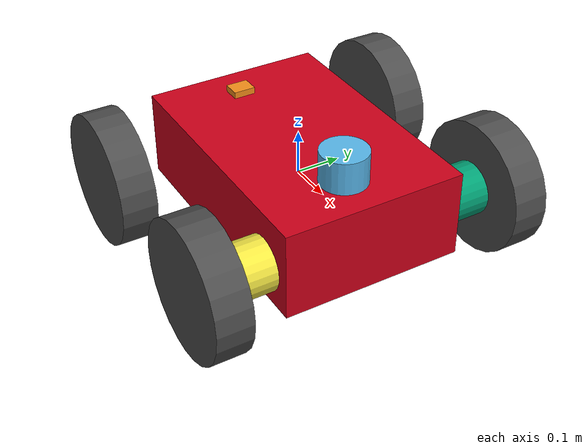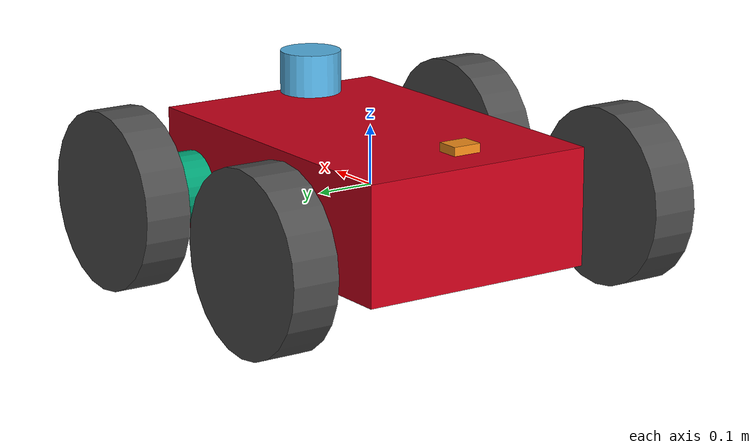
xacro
<?xml version="1.0"?>
<robot xmlns:xacro="http://www.ros.org/wiki/xacro" name="arv">

    <!-- Arguments -->
    <xacro:arg name="robot_namespace"           default=""/>
    <xacro:arg name="description_name_xacro"    default="robot_description"/>

    <xacro:property name="lidar" value="true"/>
    <!-- Includes -->
    <xacro:include filename="$(find arv_description)/urdf/arv_properties.urdf.xacro" />
    <xacro:include filename="$(find arv_description)/urdf/arv.urdf.xacro"/>

    <xacro:arv />

</robot>

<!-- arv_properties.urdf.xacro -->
<robot xmlns:xacro="http://www.ros.org/wiki/xacro" name="arv">

    <xacro:property name="base_link_name" value="base_link"/>

    <xacro:property name="chassisHeight" value="0.197"/>
    <xacro:property name="chassisLength" value="0.605"/>
    <xacro:property name="chassisWidth" value="0.410"/>
    <xacro:property name="chassisMass" value="40"/>

    <xacro:property name="hingeMass" value="0.2"/>
    <xacro:property name="hingeRadius" value="0.06"/>
    <xacro:property name="hingeLength" value="0.1"/>
    <xacro:property name="hingeX" value="0.2159"/>

    <xacro:property name="wheelWidth" value="0.08"/>
    <xacro:property name="wheelRadius" value="0.15"/>
    <xacro:property name="backWheelX" value="-0.2159"/>
    <xacro:property name="wheelClearance" value="0.1"/>
    <xacro:property name="wheelHeight" value="0.08"/>
    <xacro:property name="wheelMass" value="5"/>

</robot>

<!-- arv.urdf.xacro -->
<robot name="arv" xmlns:xacro="http://www.ros.org/wiki/xacro">

    <xacro:include filename="$(find arv_description)/urdf/arv_utils.urdf.xacro" />
    <xacro:include filename="$(find arv_description)/urdf/arv_lidar.gazebo.xacro"/>
    <xacro:include filename="$(find arv_description)/urdf/arv_imu.gazebo.xacro"/>
    <xacro:property name="PI" value="3.1415926535897931"/>

    <!--    Model macros    -->
    <!-- Front Wheel -->
    <xacro:macro name="front_wheel" params="prefix X Y friction_coeff:=0.2 transmission_reduction:=1" >
        <joint name="${prefix}_FRONT_WHEEL_JOINT" type="continuous">
            <parent link="${prefix}_HINGE"/>
            <child link="${prefix}_FRONT_WHEEL"/>
            <origin xyz="0 0 ${Y}" rpy="0 0 0" />
            <axis xyz="0 1 0" rpy="0 0 0" />
            <dynamics damping="1.0" friction="0.0"/>
            <limit effort="1" velocity="1"/>
            <joint_properties damping="0.2" friction="0.2"/>
        </joint>

        <link name="${prefix}_FRONT_WHEEL">
            <collision>
                <origin xyz="0 0 0" rpy="0 0 0" />
                <geometry>
                    <cylinder length="${wheelWidth}" radius="${wheelRadius}"/>
                </geometry>
            </collision>
            <visual>
                <origin xyz="0 0 0" rpy="0 0 0" />
                <geometry>
                    <cylinder length="${wheelWidth}" radius="${wheelRadius}"/>
                </geometry>
            </visual>
            <inertial>
                <origin xyz="0 0 0" rpy="0 0 0" />
                <mass value="${wheelMass}"/>
                <xacro:cylinder_inertia m="${wheelMass}" r="${wheelRadius}" h="${wheelWidth}"/>
            </inertial>
        </link>

        <gazebo reference="${prefix}_FRONT_WHEEL">
            <mu1 value="${friction_coeff}"/>
            <mu2 value="${friction_coeff}"/>
            <fdir1 value="1 0 0"/>
            <kp>10000000.0</kp>
            <kd>1.0</kd>
            <minDepth>0.005</minDepth>
            <maxVel>100.0</maxVel>
            <material>Gazebo/DarkGrey</material>
        </gazebo>

        <transmission name="${prefix}_FRONT_WHEEL_TRANS" type="SimpleTransmission">
            <type>transmission_interface/SimpleTransmission</type>
            <joint name="${prefix}_FRONT_WHEEL_JOINT">
                <hardwareInterface>EffortJointInterface</hardwareInterface>
            </joint>
            <actuator name="${prefix}_FRONT_ACTUATOR">
                <hardwareInterface>EffortJointInterface</hardwareInterface>
                <mechanicalReduction>${transmission_reduction}</mechanicalReduction>
            </actuator>
        </transmission>

    </xacro:macro>

    <!-- Front Hinge -->
    <xacro:macro name="hinge" params="prefix X Y friction_coeff:=0.2 transmission_reduction:=1">
        <joint name="${prefix}_HINGE_JOINT" type="revolute">
            <parent link="${base_link_name}"/>
            <child link="${prefix}_HINGE"/>
            <origin xyz="${X} ${Y} ${wheelHeight - chassisHeight/2.0}" rpy="-${0.5*PI} 0.0 0.0"/>
            <axis xyz="0 1 0" rpy="0 0 0"/>
            <dynamics damping="0.0" friction="0.0"/>
            <limit lower="-1" upper="1" effort="100" velocity="1"/>
        </joint>

        <link name="${prefix}_HINGE">
            <visual>
                <origin xyz="0.0 0.0 0.0" rpy="0.0 0.0 0.0"/>
                <geometry>
                    <cylinder radius="${hingeRadius}" length="${hingeLength}"/>
                </geometry>
            </visual>
            <inertial>
                <origin xyz="0.0 0.0 0.0" rpy="0.0 0.0 0.0"/>
                <mass value="${hingeMass}"/>
                <xacro:cylinder_inertia m="${hingeMass}" r="${hingeRadius}" h="${hingeLength}"/>
            </inertial>
        </link>

        <gazebo reference="${prefix}_WHEEL_HINGE">
            <mu1 value="${friction_coeff}"/>
            <mu2 value="${friction_coeff}"/>
            <kp>10000000.0</kp>
            <kd>1.0</kd>
            <fdir1 value="0 1 0"/>
            <material>Gazebo/DarkGrey</material>
        </gazebo>

        <transmission name="${prefix}_HINGE_TRANS">
            <type>transmission_interface/SimpleTransmission</type>
            <joint name="${prefix}_HINGE_JOINT">
                <hardwareInterface>EffortJointInterface</hardwareInterface>
            </joint>
            <actuator name="${prefix}_ACTUATOR">
                <hardwareInterface>EffortJointInterface</hardwareInterface>
                <mechanicalReduction>${transmission_reduction}</mechanicalReduction>
            </actuator>
        </transmission>

    </xacro:macro>

    <!-- Rear Wheel -->
    <xacro:macro name="rear_wheel" params="prefix X Y friction_coeff:=0.2 transmission_reduction:=1" >
        <joint name="${prefix}_REAR_WHEEL_JOINT" type="continuous">
            <parent link="${base_link_name}"/>
            <child link="${prefix}_REAR_WHEEL"/>
            <origin xyz="${X} ${Y} ${wheelHeight - chassisHeight/2.0}" rpy="${PI/2} 0 0" />
            <axis xyz="0 0 1" rpy="0 0 0" />
            <dynamics damping="1.0" friction="0.0"/>
            <limit effort="1" velocity="1"/>
            <joint_properties damping="0.2" friction="0.2"/>
        </joint>

        <link name="${prefix}_REAR_WHEEL">
            <collision>
                <origin xyz="0 0 0" rpy="0 0 0" />
                <geometry>
                    <cylinder length="${wheelWidth}" radius="${wheelRadius}"/>
                </geometry>
            </collision>
            <visual>
                <origin xyz="0 0 0" rpy="0 0 0" />
                <geometry>
                    <cylinder length="${wheelWidth}" radius="${wheelRadius}"/>
                </geometry>
            </visual>
            <inertial>
                <origin xyz="0 0 0" rpy="0 0 0" />
                <mass value="${wheelMass}"/>
                <xacro:cylinder_inertia m="${wheelMass}" r="${wheelRadius}" h="${wheelWidth}"/>
            </inertial>
        </link>

        <gazebo reference="${prefix}_REAR_WHEEL">
            <mu1 value="${friction_coeff}"/>
            <mu2 value="${friction_coeff}"/>
            <fdir1 value="1 0 0"/>
            <kp>10000000.0</kp>
            <kd>1.0</kd>
            <minDepth>0.005</minDepth>
            <maxVel>100.0</maxVel>
            <material>Gazebo/DarkGrey</material>
        </gazebo>

        <transmission name="${prefix}_REAR_WHEEL_TRANS" type="SimpleTransmission">
            <type>transmission_interface/SimpleTransmission</type>
            <joint name="${prefix}_REAR_WHEEL_JOINT">
                <hardwareInterface>EffortJointInterface</hardwareInterface>
            </joint>
            <actuator name="${prefix}_REAR_ACTUATOR">
                <hardwareInterface>EffortJointInterface</hardwareInterface>
                <mechanicalReduction>${transmission_reduction}</mechanicalReduction>
            </actuator>
        </transmission>

    </xacro:macro>

    <!-- Chassis -->
    <xacro:macro name="chassis">

        <link name="${base_link_name}">
            <collision>
                <origin xyz="0 0 0" rpy="0 0 0"/>
                <geometry>
                    <box size="${chassisLength} ${chassisWidth} ${chassisHeight}"/>
                </geometry>
            </collision>
            <visual>
                <origin xyz="0 0 0" rpy="0 0 0"/>
                <geometry>
                    <box size="${chassisLength} ${chassisWidth} ${chassisHeight}"/>
                </geometry>
                <material name="base_material">
                    <color rgba="0.8 0.0 0.1 1.0"/>
                </material>
            </visual>
        </link>

        <gazebo reference="${base_link_name}">
            <material>Gazebo/Red</material>
        </gazebo>

        <!-- Fixed joint to add dummy inertia link -->
        <joint name="base_to_base_inertia" type="fixed">
        <parent link="${base_link_name}"/>
        <child link="base_inertia"/>
        <origin xyz="0 0 0" rpy="0 0 0"/>
        </joint>

        <!-- Dummy inertia link, because KDL cannot have inertia on the base link -->
        <link name="base_inertia">
        <inertial>
            <origin xyz="0 0 0" rpy="0 0 0"/>
            <mass value="${chassisMass}"/>
            <xacro:box_inertia m="${chassisMass}"
                        x="${chassisLength}"
                        y="${chassisWidth}"
                        z="${chassisHeight}"/>
        </inertial>
        </link>

    </xacro:macro>

    <xacro:macro name="arv" params="wheel_joint_type:=continuous lidar:=true simulation:=true">
        <xacro:chassis/>

        <xacro:hinge prefix="LEFT"
            X = "${hingeX}"
            Y = "${chassisWidth/2+hingeLength/2}"/>

        <xacro:hinge prefix="RIGHT"
            X = "${hingeX}"
            Y = "${-chassisWidth/2-hingeLength/2}"/>

        <xacro:front_wheel prefix="LEFT"
            X="0"
            Y="${hingeLength/2+wheelWidth/2}"
            friction_coeff="0.5" />

        <xacro:front_wheel prefix="RIGHT"
            X="0"
            Y="${-hingeLength/2-wheelWidth/2}"
            friction_coeff="0.5"/>

        <xacro:rear_wheel prefix="LEFT"
            X="${backWheelX}"
            Y="${chassisWidth/2+wheelClearance+wheelWidth/2}"
            friction_coeff="0.0" />

        <xacro:rear_wheel prefix="RIGHT"
            X="${backWheelX}"
            Y="${-chassisWidth/2-wheelClearance-wheelWidth/2}"
            friction_coeff="0.0" />

        <xacro:IMU base_link="${base_link_name}"/>
        <xacro:LIDAR base_link="${base_link_name}"/>

    </xacro:macro>
</robot>

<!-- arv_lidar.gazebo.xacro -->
<robot name="arv" xmlns:xacro="http://www.ros.org/wiki/xacro">

  <xacro:macro name="LIDAR" params="base_link">
    <xacro:property name="lidar_base_link"		value="${base_link}"/>
    <xacro:property name="lidar_origin_rpy"		value="0 0 0"/>
    <xacro:property name="lidar_origin_xyz"		value="${hingeX} -0.02397 ${chassisHeight/2.0+0.05}"/>
    <xacro:property name="lidar_height"		value="0.0717"/>
    <xacro:property name="lidar_radius"		value="0.0516"/>
    <xacro:property name="lidar_mass"		value="0.15"/>

    <xacro:property name="lidar_update_rate"		value="400"/>
    <xacro:property name="lidar_link"  			value="lidar_link"/>
    <xacro:property name="lidar_topic" 			value="/arv/scan"/>

    <joint name="lidar_joint" type="fixed">
      <origin xyz="${lidar_origin_xyz}" rpy="${lidar_origin_rpy}"/>
      <parent link="${lidar_base_link}"/>
      <child link="lidar_link"/>
    </joint>

    <link name="lidar_link">
      <inertial>
        <mass value="${lidar_mass}"/>
        <origin xyz="0 0 0"/>
        <xacro:cylinder_inertia m="${lidar_mass}" r="${lidar_radius}" h="${lidar_height}"/>
      </inertial>
      <visual>
        <geometry>
          <cylinder radius="${lidar_radius}" length="${lidar_height}"/>
        </geometry>
      </visual>
      <collision>
        <origin rpy="0 0 0" xyz="0 0 0"/>
        <geometry>
          <cylinder radius="${lidar_radius}" length="${lidar_height}"/>
        </geometry>
      </collision>
    </link>

    <gazebo reference="lidar_link">
      <sensor name='gpu_lidar' type='gpu_lidar'>
          <topic>${lidar_topic}</topic>
          <update_rate>${lidar_update_rate}</update_rate>
          <ignition_frame_id>arv/lidar_link</ignition_frame_id>
          <lidar>
              <scan>
                  <horizontal>
                      <samples>640</samples>
                      <resolution>1</resolution>
                      <min_angle>-1.396263</min_angle>
                      <max_angle>1.396263</max_angle>
                  </horizontal>
                <vertical>
                  <samples>1</samples>
                  <resolution>1</resolution>
                  <min_angle>0.0</min_angle>
                  <max_angle>0.0</max_angle>
                </vertical>
              </scan>
              <range>
                  <min>0.08</min>
                  <max>10</max>
                  <resolution>0.01</resolution>
              </range>
              <noise>
                  <type>gaussian</type>
                  <mean>0.0</mean>
                  <stddev>0.001</stddev>
              </noise>
          </lidar>
          <alwaysOn>1</alwaysOn>
          <visualize>true</visualize>
        </sensor>
      </gazebo>

      <gazebo reference="rslidar_base_mount_joint">
        <preserveFixedJoint>true</preserveFixedJoint>
      </gazebo>

      <gazebo reference="rslidar_base_scan_joint">
        <preserveFixedJoint>true</preserveFixedJoint>
      </gazebo>

  </xacro:macro>

</robot>

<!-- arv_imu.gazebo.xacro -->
<!-- This file contains plugins to simulate an Imu sensor attached to the robot. -->

<robot name="arv" xmlns:xacro="http://www.ros.org/wiki/xacro">
    <xacro:macro name="IMU" params="base_link">
        <!--                              Imu  Properties 				          	-->
        <xacro:property name="imu_base_link"		value="${base_link}"/>
        <xacro:property name="imu_origin_rpy"		value="0 0 0"/>
        <xacro:property name="imu_origin_xyz"		value="-0.2159 -0.02397 ${chassisHeight/2.0+0.005}"/>

        <xacro:property name="imu_update_rate"		value="400"/>
        <xacro:property name="imu_link"  			value="imu_link"/>
        <xacro:property name="imu_topic" 			value="/arv/imu"/>
        <xacro:property name="imu_calibration_service_name" value="/imu/calibrate"/>
        <xacro:property name="acceleration_offset"          value="0.0 0.0 0.0"/>
        <xacro:property name="acceleration_drift"           value="0.0 0.0 0.0"/>
        <xacro:property name="acceleration_drift_frequency" value="0.0 0.0 0.0"/>
        <xacro:property name="acceleration_gaussian_noise" 	value="0.0 0.0 0.0"/>
        <xacro:property name="rate_offset" 			value="0.0 0.0 0.0"/>
        <xacro:property name="rate_drift" 			value="0.0 0.0 0.0"/>
        <xacro:property name="rate_drift_frequency"	 	value="0.0 0.0 0.0"/>
        <xacro:property name="rate_gaussian_noise" 		value="0.0 0.0 0.0"/>
        <xacro:property name="heading_offset" 		value="0.0"/>
        <xacro:property name="heading_drift" 		value="0.0"/>
        <xacro:property name="heading_drift_frequency" 	value="0.0"/>
        <xacro:property name="heading_gaussian_noise" 	value="0.0"/>

        <gazebo reference="imu_link">
            <sensor name="imu_sensor" type="imu">
                <always_on>1</always_on>
                <update_rate>${imu_update_rate}</update_rate>
                <ignition_frame_id>arv/imu_link</ignition_frame_id>
                <visualize>true</visualize>
                <topic>${imu_topic}</topic>
            </sensor>
        </gazebo>

        <!-- Imu is fixed to the base link -->
        <joint name="imu_joint" type="fixed">
            <origin xyz="${imu_origin_xyz}" rpy="${imu_origin_rpy}"/>
            <parent link="${imu_base_link}"/>
            <child link="${imu_link}"/>
        </joint>

        <!-- Imu link -->
        <link name="${imu_link}">
            <inertial>
                <mass value="0.001"/>
                <origin rpy="0 0 0" xyz="0 0 0"/>
                <inertia ixx="0.0001" ixy="0" ixz="0" iyy="0.000001" iyz="0" izz="0.0001"/>
            </inertial>
            <visual>
                <origin rpy="0 0 0" xyz="0 0 0"/>
                <geometry>
                    <box size="0.04 0.05 0.02"/>
                </geometry>
            </visual>
            <collision>
                <origin rpy="0 0 0" xyz="0 0 0"/>
                <geometry>
                    <box size=".001 .001 .001"/>
                </geometry>
            </collision>
        </link>

        <gazebo reference="${imu_link}">
            <material>Gazebo/Orange</material>
        </gazebo>

        <gazebo reference="imu_joint">
            <preserveFixedJoint>true</preserveFixedJoint>
        </gazebo>

    </xacro:macro>
</robot>
